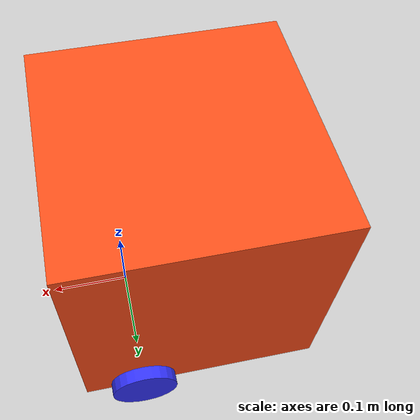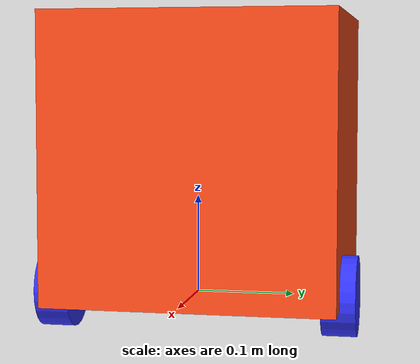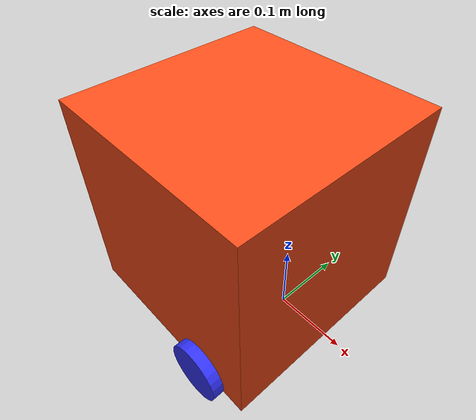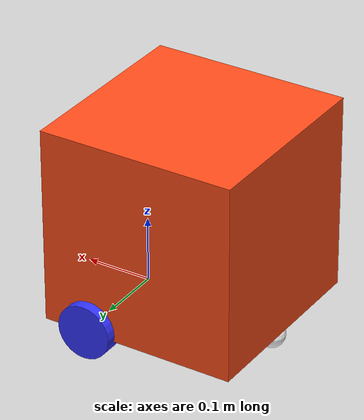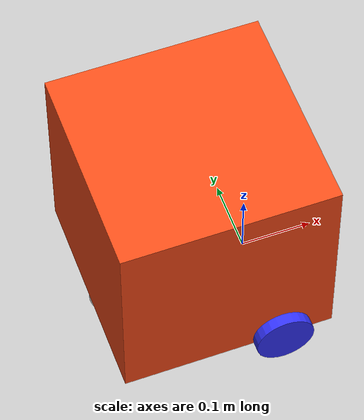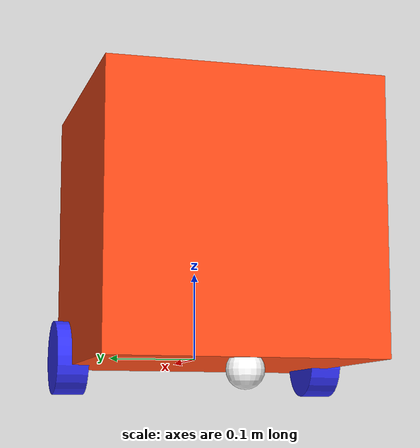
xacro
<?xml version="1.0"?>
<robot xmlns:xacro="http://www.ros.org/wiki/xacro" >

     <xacro:include filename="/home/robot/dev_ws/src/agni_2/description/inertial_macros.xacro"/>

    <xacro:property name="body_length" value="0.3"/>
    <xacro:property name="body_width" value="0.3"/>
    <xacro:property name="body_height" value="0.3"/>
    <xacro:property name="body_mass" value="5"/>
    <xacro:property name="wheel_radius" value="0.0415"/>
    <xacro:property name="wheel_thickness" value="0.035"/>
    <xacro:property name="wheel_mass" value="0.05"/>
    <xacro:property name="wheel_offset_x" value="0.226"/>
    <xacro:property name="wheel_offset_y" value="0.1485"/>
    <xacro:property name="wheel_offset_z" value="0.01"/>
    <xacro:property name="caster_wheel_radius" value="0.02"/>
    <xacro:property name="caster_wheel_mass" value="0.01"/>
    <xacro:property name="caster_wheel_offset_x" value="0.02"/>
    <xacro:property name="caster_wheel_offset_z" value="${wheel_offset_z - wheel_radius + caster_wheel_radius}"/>

  <material name="white">
      <color rgba="1 1 1 1"/>
  </material>

  <material name="orange">
      <color rgba="1 0.3 0.1 1"/>
  </material>

  <material name="blue">
      <color rgba="0.2 0.2 1 1"/>
  </material>

  <material name="black">
      <color rgba="0 0 0 1"/>
  </material>

  <material name="red">
      <color rgba="1 0 0 1"/>
  </material>

<!--/////////////////////////// base link //////////////////////// -->
  <link name="base_link">
     <pose>0 0 0 0 0 -3.14159</pose>
  </link>

<!--/////////////////////////// base footprint link //////////////////////// -->
 <joint name="base_footprint_joint" type="fixed">
    <parent link="base_link"/>
    <child link="base_footprint"/>
    <origin xyz="0.0 0.0 0.0" rpy="0.0 0.0 0.0"/>
  </joint>

  <link name="base_footprint">
  </link>

<!--/////////////////////////// body link //////////////////////// -->

      <joint name="body_joint" type="fixed">
        <parent link="base_link"/>
        <child link="body"/>
        <origin xyz="${-wheel_offset_x} 0 ${-wheel_offset_z}" rpy="0 0 0"/>
    </joint>

    <link name="body">
        <visual>
            <origin xyz="${body_length/2} 0 ${body_height/2}"/>
            <pose xyz="${body_length/2} 0 ${body_height/2}" rz="180.0"/>
            <geometry>
                <box size="${body_length} ${body_width} ${body_height}"/>
            </geometry>
            <material name="orange"/>
        </visual>
        <collision>
            <origin xyz="${body_length/2} 0 ${body_height/2}"/>
            <pose xyz="${body_length/2} 0 ${body_height/2}" rz="180.0"/>
            <geometry>
                <box size="${body_length} ${body_width} ${body_height}"/>
            </geometry>
        </collision>
        <xacro:inertial_box mass="0.5" x="${body_length}" y="${body_width}" z="${body_height}">
            <origin xyz="${body_length/2} 0 ${body_height/2}" rpy="0 0 0"/>
        </xacro:inertial_box>
    </link>

    <gazebo reference="body">
        <material>Gazebo/Blue</material>
    </gazebo>

<!--/////////////////////////// left wheel link //////////////////////// -->
<joint name="left_wheel_joint" type="continuous">
        <parent link="base_link"/>
        <child link="left_wheel"/>
        <origin xyz="0 ${wheel_offset_y} 0" rpy="${-pi/2} 0 0" />
        <axis xyz="0 0 1"/>
    </joint>

    <link name="left_wheel">
        <visual>
            <geometry>
                <cylinder radius="${wheel_radius}" length="${wheel_thickness}"/>
            </geometry>
            <material name="blue"/>
        </visual>
        <collision>
            <geometry>
                <sphere radius="${wheel_radius}"/>
            </geometry>
        </collision>
        <xacro:inertial_cylinder mass="${wheel_mass}" length="${wheel_thickness}" radius="${wheel_radius}">
            <origin xyz="0 0 0" rpy="0 0 0"/>
        </xacro:inertial_cylinder>
    </link>

    <gazebo reference="left_wheel">
        <material>Gazebo/Black</material>
    </gazebo>

 <!--/////////////////////////// right wheel link //////////////////////// -->
  <joint name="right_wheel_joint" type="continuous">
        <parent link="base_link"/>
        <child link="right_wheel"/>
        <origin xyz="0 ${-wheel_offset_y} 0" rpy="${pi/2} 0 0" />
        <axis xyz="0 0 -1"/>
    </joint>

    <link name="right_wheel">
        <visual>
            <geometry>
                <cylinder radius="${wheel_radius}" length="${wheel_thickness}"/>
            </geometry>
            <material name="blue"/>
        </visual>
        <collision>
            <geometry>
                <sphere radius="${wheel_radius}"/>
            </geometry>
        </collision>
        <xacro:inertial_cylinder mass="${wheel_mass}" length="${wheel_thickness}" radius="${wheel_radius}">
            <origin xyz="0 0 0" rpy="0 0 0"/>
        </xacro:inertial_cylinder>
    </link>

    <gazebo reference="right_wheel">
        <material>Gazebo/Black</material>
    </gazebo>

  <!--/////////////////////////// caster wheel link //////////////////////// -->
 <joint name="caster_wheel_joint" type="fixed">
        <parent link="body"/>
        <child link="caster_wheel"/>
        <origin xyz="${caster_wheel_offset_x} 0 ${caster_wheel_offset_z}"/>
    </joint>

    <link name="caster_wheel">
        <visual>
            <geometry>
                <sphere radius="${caster_wheel_radius}"/>
            </geometry>
            <material name="white"/>
        </visual>
        <collision>
            <geometry>
                <sphere radius="${caster_wheel_radius}"/>
            </geometry>
        </collision>
        <xacro:inertial_sphere mass="${caster_wheel_mass}" radius="${caster_wheel_radius}">
            <origin xyz="0 0 0" rpy="0 0 0"/>
        </xacro:inertial_sphere>
    </link>

    <gazebo reference="caster_wheel">
        <material>Gazebo/White</material>
        <mu1 value="0.001"/>
        <mu2 value="0.001"/>
    </gazebo>

</robot>
